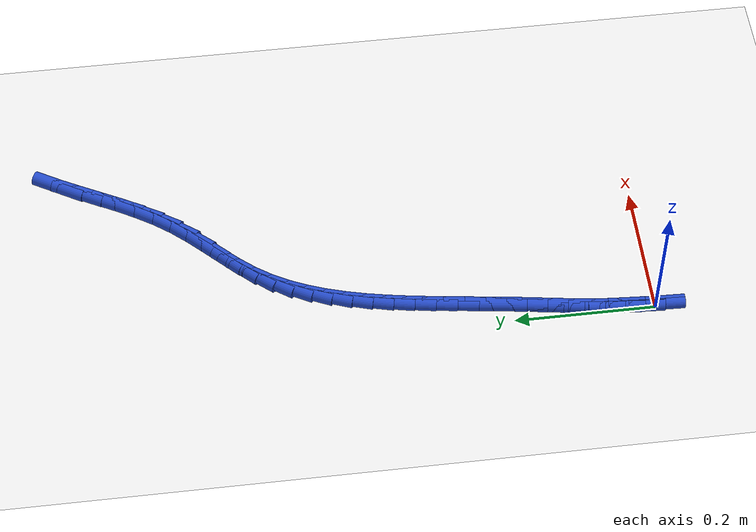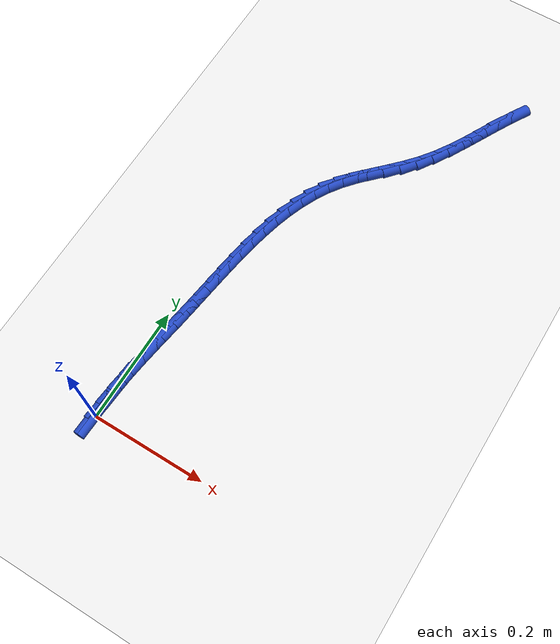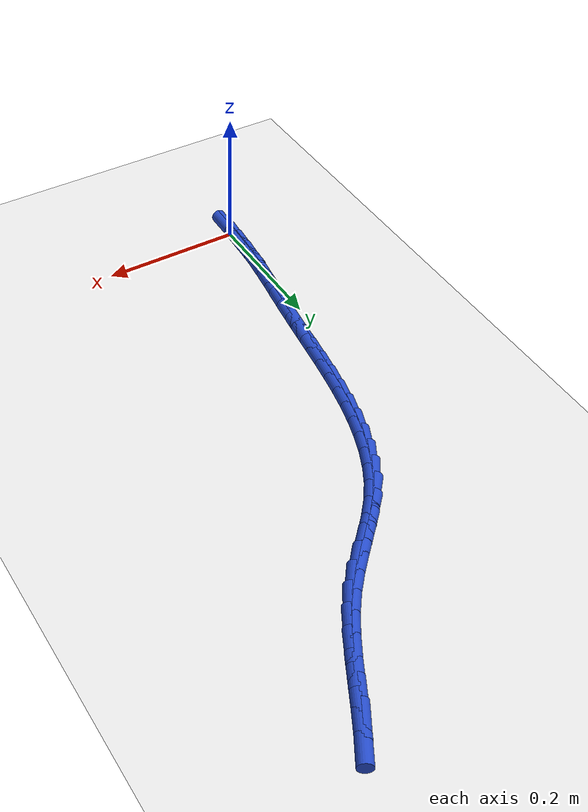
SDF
<sdf version="1.6">
 <world name="default">
  <model name="ground_plane">
   <static>1</static>
   <link name="link">
    <collision name="collision">
     <geometry><plane><normal>0 0 1</normal><size>100 100</size></plane></geometry>
     <surface><friction><ode><mu>100</mu><mu2>50</mu2></ode></friction></surface>
    </collision>
    <visual name="visual">
     <cast_shadows>0</cast_shadows>
     <geometry><plane><normal>0 0 1</normal><size>100 100</size></plane></geometry>
     <material>
      <script><uri>file://media/materials/scripts/gazebo.material</uri><name>Gazebo/WhiteGlow</name></script>
     </material>
    </visual>
   </link>
  </model>
  <model name="line">
   <link name="link_0">
    <pose>1.0408340855860843e-17 -6.245004513516506e-17 0.01 0 1.57 1.5413998875680217</pose>
    <collision name="collision">
     <geometry><cylinder><radius>0.01</radius><length>0.08</length></cylinder></geometry>
    </collision>
    <visual name="visual">
     <material>
      <script><name>Gazebo/Blue</name><uri>file://media/materials/scripts/gazebo.material</uri></script>
     </material>
     <geometry><cylinder><radius>0.01</radius><length>0.08</length></cylinder></geometry>
    </visual>
   </link>
   <link name="link_1">
    <pose>0.0008208869173547347 0.027916661631916757 0.01 0 1.57 1.5023600003773971</pose>
    <collision name="collision">
     <geometry><cylinder><radius>0.01</radius><length>0.08</length></cylinder></geometry>
    </collision>
    <visual name="visual">
     <material>
      <script><name>Gazebo/Blue</name><uri>file://media/materials/scripts/gazebo.material</uri></script>
     </material>
     <geometry><cylinder><radius>0.01</radius><length>0.08</length></cylinder></geometry>
    </visual>
   </link>
   <link name="link_2">
    <pose>0.002737069771999113 0.055872434828273414 0.01 0 1.57 1.4710863099867224</pose>
    <collision name="collision">
     <geometry><cylinder><radius>0.01</radius><length>0.08</length></cylinder></geometry>
    </collision>
    <visual name="visual">
     <material>
      <script><name>Gazebo/Blue</name><uri>file://media/materials/scripts/gazebo.material</uri></script>
     </material>
     <geometry><cylinder><radius>0.01</radius><length>0.08</length></cylinder></geometry>
    </visual>
   </link>
   <link name="link_3">
    <pose>0.005542150831564545 0.08391153121294292 0.01 0 1.57 1.447603722277535</pose>
    <collision name="collision">
     <geometry><cylinder><radius>0.01</radius><length>0.08</length></cylinder></geometry>
    </collision>
    <visual name="visual">
     <material>
      <script><name>Gazebo/Blue</name><uri>file://media/materials/scripts/gazebo.material</uri></script>
     </material>
     <geometry><cylinder><radius>0.01</radius><length>0.08</length></cylinder></geometry>
    </visual>
   </link>
   <link name="link_4">
    <pose>0.009029732363682437 0.11207816240979832 0.01 0 1.57 1.4318280480278773</pose>
    <collision name="collision">
     <geometry><cylinder><radius>0.01</radius><length>0.08</length></cylinder></geometry>
    </collision>
    <visual name="visual">
     <material>
      <script><name>Gazebo/Blue</name><uri>file://media/materials/scripts/gazebo.material</uri></script>
     </material>
     <geometry><cylinder><radius>0.01</radius><length>0.08</length></cylinder></geometry>
    </visual>
   </link>
   <link name="link_5">
    <pose>0.012993416635984195 0.1404165400427126 0.01 0 1.57 1.4236111460160457</pose>
    <collision name="collision">
     <geometry><cylinder><radius>0.01</radius><length>0.08</length></cylinder></geometry>
    </collision>
    <visual name="visual">
     <material>
      <script><name>Gazebo/Blue</name><uri>file://media/materials/scripts/gazebo.material</uri></script>
     </material>
     <geometry><cylinder><radius>0.01</radius><length>0.08</length></cylinder></geometry>
    </visual>
   </link>
   <link name="link_6">
    <pose>0.01722680591610122 0.16897087573555886 0.01 0 1.57 1.4227712841737792</pose>
    <collision name="collision">
     <geometry><cylinder><radius>0.01</radius><length>0.08</length></cylinder></geometry>
    </collision>
    <visual name="visual">
     <material>
      <script><name>Gazebo/Blue</name><uri>file://media/materials/scripts/gazebo.material</uri></script>
     </material>
     <geometry><cylinder><radius>0.01</radius><length>0.08</length></cylinder></geometry>
    </visual>
   </link>
   <link name="link_7">
    <pose>0.021523502471664926 0.19778538111221006 0.01 0 1.57 1.4291004208117595</pose>
    <collision name="collision">
     <geometry><cylinder><radius>0.01</radius><length>0.08</length></cylinder></geometry>
    </collision>
    <visual name="visual">
     <material>
      <script><name>Gazebo/Blue</name><uri>file://media/materials/scripts/gazebo.material</uri></script>
     </material>
     <geometry><cylinder><radius>0.01</radius><length>0.08</length></cylinder></geometry>
    </visual>
   </link>
   <link name="link_8">
    <pose>0.02567735066279493 0.22690415439916856 0.01 0 1.57 1.4385400448607677</pose>
    <collision name="collision">
     <geometry><cylinder><radius>0.01</radius><length>0.08</length></cylinder></geometry>
    </collision>
    <visual name="visual">
     <material>
      <script><name>Gazebo/Blue</name><uri>file://media/materials/scripts/gazebo.material</uri></script>
     </material>
     <geometry><cylinder><radius>0.01</radius><length>0.08</length></cylinder></geometry>
    </visual>
   </link>
   <link name="link_9">
    <pose>0.029590687545915446 0.25632047528417756 0.01 0 1.57 1.4412124151300347</pose>
    <collision name="collision">
     <geometry><cylinder><radius>0.01</radius><length>0.08</length></cylinder></geometry>
    </collision>
    <visual name="visual">
     <material>
      <script><name>Gazebo/Blue</name><uri>file://media/materials/scripts/gazebo.material</uri></script>
     </material>
     <geometry><cylinder><radius>0.01</radius><length>0.08</length></cylinder></geometry>
    </visual>
   </link>
   <link name="link_10">
    <pose>0.03344491497119096 0.28589690806564944 0.01 0 1.57 1.435688284381412</pose>
    <collision name="collision">
     <geometry><cylinder><radius>0.01</radius><length>0.08</length></cylinder></geometry>
    </collision>
    <visual name="visual">
     <material>
      <script><name>Gazebo/Blue</name><uri>file://media/materials/scripts/gazebo.material</uri></script>
     </material>
     <geometry><cylinder><radius>0.01</radius><length>0.08</length></cylinder></geometry>
    </visual>
   </link>
   <link name="link_11">
    <pose>0.03746568724147757 0.31547528896481797 0.01 0 1.57 1.4219181251718982</pose>
    <collision name="collision">
     <geometry><cylinder><radius>0.01</radius><length>0.08</length></cylinder></geometry>
    </collision>
    <visual name="visual">
     <material>
      <script><name>Gazebo/Blue</name><uri>file://media/materials/scripts/gazebo.material</uri></script>
     </material>
     <geometry><cylinder><radius>0.01</radius><length>0.08</length></cylinder></geometry>
    </visual>
   </link>
   <link name="link_12">
    <pose>0.04187865865963135 0.34489745420291695 0.01 0 1.57 1.3996527403171772</pose>
    <collision name="collision">
     <geometry><cylinder><radius>0.01</radius><length>0.08</length></cylinder></geometry>
    </collision>
    <visual name="visual">
     <material>
      <script><name>Gazebo/Blue</name><uri>file://media/materials/scripts/gazebo.material</uri></script>
     </material>
     <geometry><cylinder><radius>0.01</radius><length>0.08</length></cylinder></geometry>
    </visual>
   </link>
   <link name="link_13">
    <pose>0.046909483528508406 0.3740052400011805 0.01 0 1.57 1.3684600635219324</pose>
    <collision name="collision">
     <geometry><cylinder><radius>0.01</radius><length>0.08</length></cylinder></geometry>
    </collision>
    <visual name="visual">
     <material>
      <script><name>Gazebo/Blue</name><uri>file://media/materials/scripts/gazebo.material</uri></script>
     </material>
     <geometry><cylinder><radius>0.01</radius><length>0.08</length></cylinder></geometry>
    </visual>
   </link>
   <link name="link_14">
    <pose>0.0527838161509648 0.40264048258084234 0.01 0 1.57 1.3277557386967336</pose>
    <collision name="collision">
     <geometry><cylinder><radius>0.01</radius><length>0.08</length></cylinder></geometry>
    </collision>
    <visual name="visual">
     <material>
      <script><name>Gazebo/Blue</name><uri>file://media/materials/scripts/gazebo.material</uri></script>
     </material>
     <geometry><cylinder><radius>0.01</radius><length>0.08</length></cylinder></geometry>
    </visual>
   </link>
   <link name="link_15">
    <pose>0.05972731082985665 0.4306450181631361 0.01 0 1.57 1.2768599603356972</pose>
    <collision name="collision">
     <geometry><cylinder><radius>0.01</radius><length>0.08</length></cylinder></geometry>
    </collision>
    <visual name="visual">
     <material>
      <script><name>Gazebo/Blue</name><uri>file://media/materials/scripts/gazebo.material</uri></script>
     </material>
     <geometry><cylinder><radius>0.01</radius><length>0.08</length></cylinder></geometry>
    </visual>
   </link>
   <link name="link_16">
    <pose>0.06796562186804003 0.4578606829692961 0.01 0 1.57 1.21509815792084</pose>
    <collision name="collision">
     <geometry><cylinder><radius>0.01</radius><length>0.08</length></cylinder></geometry>
    </collision>
    <visual name="visual">
     <material>
      <script><name>Gazebo/Blue</name><uri>file://media/materials/scripts/gazebo.material</uri></script>
     </material>
     <geometry><cylinder><radius>0.01</radius><length>0.08</length></cylinder></geometry>
    </visual>
   </link>
   <link name="link_17">
    <pose>0.07772440356837104 0.4841293132205559 0.01 0 1.57 1.1419649346995482</pose>
    <collision name="collision">
     <geometry><cylinder><radius>0.01</radius><length>0.08</length></cylinder></geometry>
    </collision>
    <visual name="visual">
     <material>
      <script><name>Gazebo/Blue</name><uri>file://media/materials/scripts/gazebo.material</uri></script>
     </material>
     <geometry><cylinder><radius>0.01</radius><length>0.08</length></cylinder></geometry>
    </visual>
   </link>
   <link name="link_18">
    <pose>0.08922931023370567 0.5092927451381491 0.01 0 1.57 1.05736188813486</pose>
    <collision name="collision">
     <geometry><cylinder><radius>0.01</radius><length>0.08</length></cylinder></geometry>
    </collision>
    <visual name="visual">
     <material>
      <script><name>Gazebo/Blue</name><uri>file://media/materials/scripts/gazebo.material</uri></script>
     </material>
     <geometry><cylinder><radius>0.01</radius><length>0.08</length></cylinder></geometry>
    </visual>
   </link>
   <link name="link_19">
    <pose>0.10270599616690018 0.5331928149433104 0.01 0 1.57 0.9619524386958013</pose>
    <collision name="collision">
     <geometry><cylinder><radius>0.01</radius><length>0.08</length></cylinder></geometry>
    </collision>
    <visual name="visual">
     <material>
      <script><name>Gazebo/Blue</name><uri>file://media/materials/scripts/gazebo.material</uri></script>
     </material>
     <geometry><cylinder><radius>0.01</radius><length>0.08</length></cylinder></geometry>
    </visual>
   </link>
   <link name="link_20">
    <pose>0.11837880055604023 0.5556724736370117 0.01 0 1.57 0.8703472694890867</pose>
    <collision name="collision">
     <geometry><cylinder><radius>0.01</radius><length>0.08</length></cylinder></geometry>
    </collision>
    <visual name="visual">
     <material>
      <script><name>Gazebo/Blue</name><uri>file://media/materials/scripts/gazebo.material</uri></script>
     </material>
     <geometry><cylinder><radius>0.01</radius><length>0.08</length></cylinder></geometry>
    </visual>
   </link>
   <link name="link_21">
    <pose>0.136197057925995 0.5768077846706166 0.01 0 1.57 0.8127109693033912</pose>
    <collision name="collision">
     <geometry><cylinder><radius>0.01</radius><length>0.08</length></cylinder></geometry>
    </collision>
    <visual name="visual">
     <material>
      <script><name>Gazebo/Blue</name><uri>file://media/materials/scripts/gazebo.material</uri></script>
     </material>
     <geometry><cylinder><radius>0.01</radius><length>0.08</length></cylinder></geometry>
    </visual>
   </link>
   <link name="link_22">
    <pose>0.15549838664240928 0.5971933432583749 0.01 0 1.57 0.7918627206875671</pose>
    <collision name="collision">
     <geometry><cylinder><radius>0.01</radius><length>0.08</length></cylinder></geometry>
    </collision>
    <visual name="visual">
     <material>
      <script><name>Gazebo/Blue</name><uri>file://media/materials/scripts/gazebo.material</uri></script>
     </material>
     <geometry><cylinder><radius>0.01</radius><length>0.08</length></cylinder></geometry>
    </visual>
   </link>
   <link name="link_23">
    <pose>0.17553792268249344 0.61749366223505 0.01 0 1.57 0.8060909246171055</pose>
    <collision name="collision">
     <geometry><cylinder><radius>0.01</radius><length>0.08</length></cylinder></geometry>
    </collision>
    <visual name="visual">
     <material>
      <script><name>Gazebo/Blue</name><uri>file://media/materials/scripts/gazebo.material</uri></script>
     </material>
     <geometry><cylinder><radius>0.01</radius><length>0.08</length></cylinder></geometry>
    </visual>
   </link>
   <link name="link_24">
    <pose>0.1955708020234577 0.6383732544354047 0.01 0 1.57 0.8539306330925338</pose>
    <collision name="collision">
     <geometry><cylinder><radius>0.01</radius><length>0.08</length></cylinder></geometry>
    </collision>
    <visual name="visual">
     <material>
      <script><name>Gazebo/Blue</name><uri>file://media/materials/scripts/gazebo.material</uri></script>
     </material>
     <geometry><cylinder><radius>0.01</radius><length>0.08</length></cylinder></geometry>
    </visual>
   </link>
   <link name="link_25">
    <pose>0.2148521606425124 0.6604966326942023 0.01 0 1.57 0.9313257227222355</pose>
    <collision name="collision">
     <geometry><cylinder><radius>0.01</radius><length>0.08</length></cylinder></geometry>
    </collision>
    <visual name="visual">
     <material>
      <script><name>Gazebo/Blue</name><uri>file://media/materials/scripts/gazebo.material</uri></script>
     </material>
     <geometry><cylinder><radius>0.01</radius><length>0.08</length></cylinder></geometry>
    </visual>
   </link>
   <link name="link_26">
    <pose>0.23268545992700843 0.6844751038121927 0.01 0 1.57 1.0055148349731493</pose>
    <collision name="collision">
     <geometry><cylinder><radius>0.01</radius><length>0.08</length></cylinder></geometry>
    </collision>
    <visual name="visual">
     <material>
      <script><name>Gazebo/Blue</name><uri>file://media/materials/scripts/gazebo.material</uri></script>
     </material>
     <geometry><cylinder><radius>0.01</radius><length>0.08</length></cylinder></geometry>
    </visual>
   </link>
   <link name="link_27">
    <pose>0.24901365503186382 0.7102158951617413 0.01 0 1.57 1.0561269612380986</pose>
    <collision name="collision">
     <geometry><cylinder><radius>0.01</radius><length>0.08</length></cylinder></geometry>
    </collision>
    <visual name="visual">
     <material>
      <script><name>Gazebo/Blue</name><uri>file://media/materials/scripts/gazebo.material</uri></script>
     </material>
     <geometry><cylinder><radius>0.01</radius><length>0.08</length></cylinder></geometry>
    </visual>
   </link>
   <link name="link_28">
    <pose>0.2642324517653138 0.7371277579183291 0.01 0 1.57 1.0848685483043983</pose>
    <collision name="collision">
     <geometry><cylinder><radius>0.01</radius><length>0.08</length></cylinder></geometry>
    </collision>
    <visual name="visual">
     <material>
      <script><name>Gazebo/Blue</name><uri>file://media/materials/scripts/gazebo.material</uri></script>
     </material>
     <geometry><cylinder><radius>0.01</radius><length>0.08</length></cylinder></geometry>
    </visual>
   </link>
   <link name="link_29">
    <pose>0.2787471308507492 0.7646089013239075 0.01 0 1.57 1.0929258770759624</pose>
    <collision name="collision">
     <geometry><cylinder><radius>0.01</radius><length>0.08</length></cylinder></geometry>
    </collision>
    <visual name="visual">
     <material>
      <script><name>Gazebo/Blue</name><uri>file://media/materials/scripts/gazebo.material</uri></script>
     </material>
     <geometry><cylinder><radius>0.01</radius><length>0.08</length></cylinder></geometry>
    </visual>
   </link>
   <link name="link_30">
    <pose>0.29296297301156105 0.7920575346204286 0.01 0 1.57 1.0802205135491318</pose>
    <collision name="collision">
     <geometry><cylinder><radius>0.01</radius><length>0.08</length></cylinder></geometry>
    </collision>
    <visual name="visual">
     <material>
      <script><name>Gazebo/Blue</name><uri>file://media/materials/scripts/gazebo.material</uri></script>
     </material>
     <geometry><cylinder><radius>0.01</radius><length>0.08</length></cylinder></geometry>
    </visual>
   </link>
   <link name="link_31">
    <pose>0.30728525897114034 0.8188718670498436 0.01 0 1.57 1.045252589005371</pose>
    <collision name="collision">
     <geometry><cylinder><radius>0.01</radius><length>0.08</length></cylinder></geometry>
    </collision>
    <visual name="visual">
     <material>
      <script><name>Gazebo/Blue</name><uri>file://media/materials/scripts/gazebo.material</uri></script>
     </material>
     <geometry><cylinder><radius>0.01</radius><length>0.08</length></cylinder></geometry>
    </visual>
   </link>
   <link name="link_280">
    <pose>2.3418766925686896e-17 -1.5959455978986625e-16 0.01 0 1.57 1.5391744423222624</pose>
    <collision name="collision">
     <geometry><cylinder><radius>0.01</radius><length>0.08</length></cylinder></geometry>
    </collision>
    <visual name="visual">
     <material>
      <script><name>Gazebo/Blue</name><uri>file://media/materials/scripts/gazebo.material</uri></script>
     </material>
     <geometry><cylinder><radius>0.01</radius><length>0.08</length></cylinder></geometry>
    </visual>
   </link>
   <link name="link_281">
    <pose>0.0008830512585320648 0.027916011958787842 0.01 0 1.57 1.4868711991167012</pose>
    <collision name="collision">
     <geometry><cylinder><radius>0.01</radius><length>0.08</length></cylinder></geometry>
    </collision>
    <visual name="visual">
     <material>
      <script><name>Gazebo/Blue</name><uri>file://media/materials/scripts/gazebo.material</uri></script>
     </material>
     <geometry><cylinder><radius>0.01</radius><length>0.08</length></cylinder></geometry>
    </visual>
   </link>
   <link name="link_282">
    <pose>0.0032343845014177006 0.05586723744324347 0.01 0 1.57 1.5129667596726644</pose>
    <collision name="collision">
     <geometry><cylinder><radius>0.01</radius><length>0.08</length></cylinder></geometry>
    </collision>
    <visual name="visual">
     <material>
      <script><name>Gazebo/Blue</name><uri>file://media/materials/scripts/gazebo.material</uri></script>
     </material>
     <geometry><cylinder><radius>0.01</radius><length>0.08</length></cylinder></geometry>
    </visual>
   </link>
  </model>
 </world>
</sdf>
